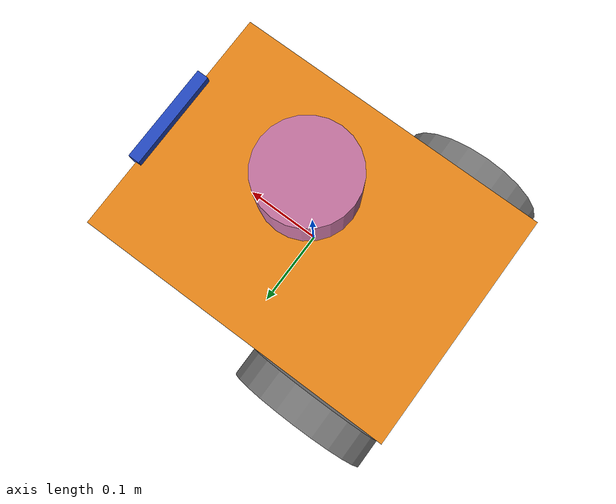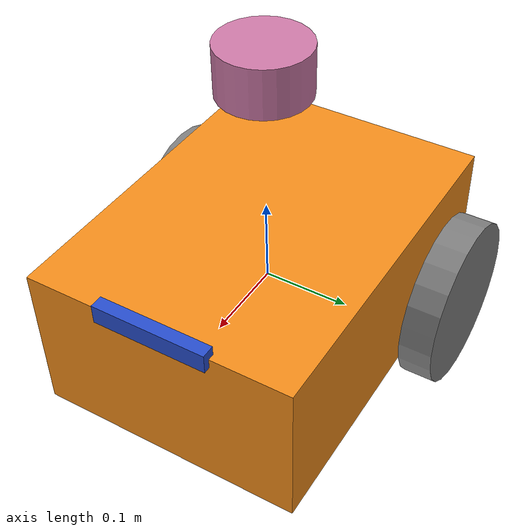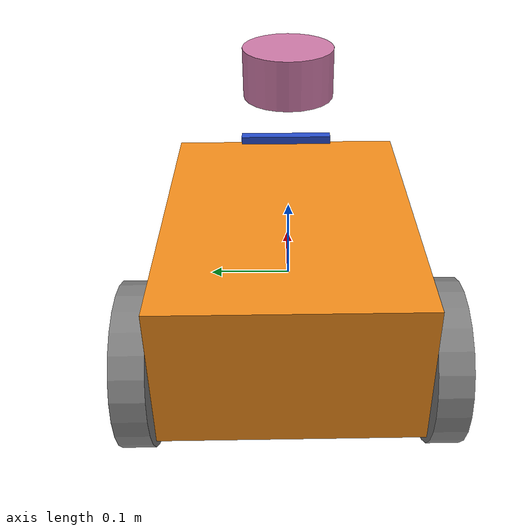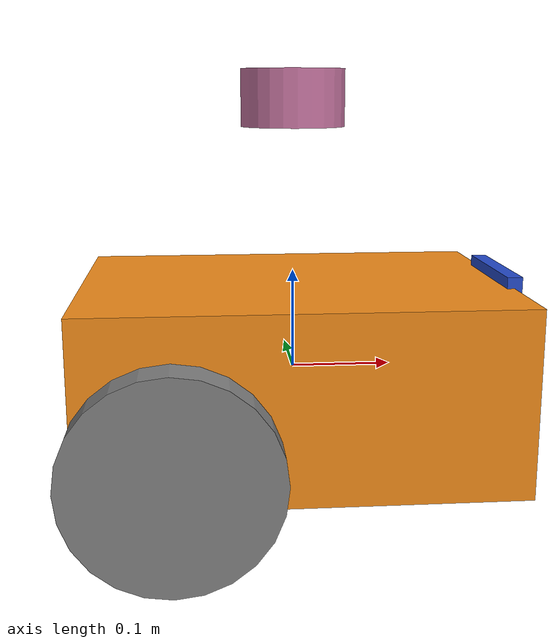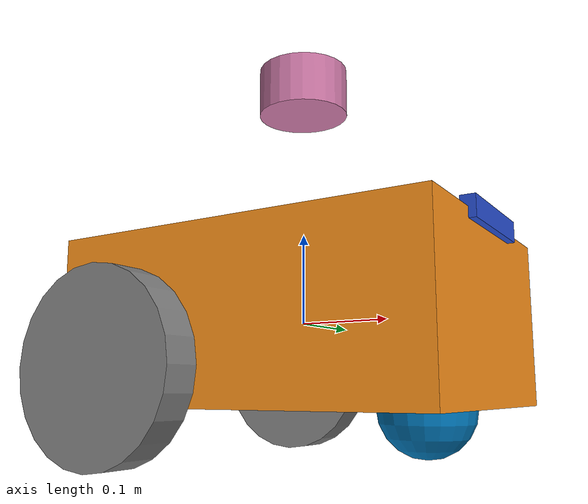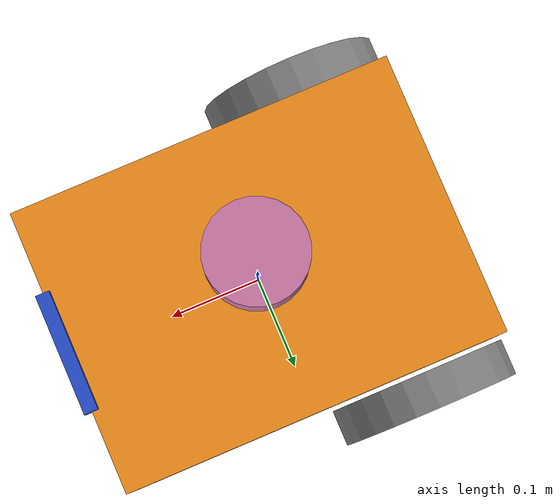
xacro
<?xml version="1.0"?>

<robot name="Anton" xmlns:xacro="http://www.ros.org/wiki/xacro">
  <xacro:include filename="./chasis_dimension_1.xacro"/>
  <xacro:include filename="./wheels_dimension_1.xacro"/>
  <xacro:include filename="./caster_dimension_1.xacro"/>
  <xacro:include filename="./chasis.xacro"/>
  <xacro:include filename="./wheels.xacro"/>
  <xacro:include filename="./caster.xacro"/>
  <xacro:include filename="./imu.xacro"/>
  <xacro:include filename="./laser.xacro"/>
  <xacro:include filename="./camera.xacro"/>
  <xacro:include filename="./AntonPlugins.xacro"/>
</robot>

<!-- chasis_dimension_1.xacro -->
<robot name="Anton" xmlns:xacro="http://www.ros.org/wiki/xacro">
  <xacro:property name="base_width" value="0.31"/>
  <xacro:property name="base_length" value="0.42"/>
  <xacro:property name="base_height" value="0.18"/>
</robot>

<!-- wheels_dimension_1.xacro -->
<robot name="Anton" xmlns:xacro="http://www.ros.org/wiki/xacro">
  <xacro:property name="base_wheel_gap" value="0.007"/>
	<xacro:property name="wheel_separation" value="0.4"/>
  <xacro:property name="wheel_joint_offset" value="0.02"/>
  <xacro:property name="wheel_radius" value="0.10"/>
  <xacro:property name="wheel_width" value="0.04"/>
  <xacro:property name="wheel_ygap" value="0.025"/>
  <xacro:property name="wheel_zoff" value="0.05"/>
  <xacro:property name="wheel_xoff" value="0.12"/>
</robot>

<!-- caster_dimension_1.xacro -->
<robot name="Anton" xmlns:xacro="http://www.ros.org/wiki/xacro">
  <xacro:property name="caster_wheel_radius" value="${wheel_radius/2}"/>
  <xacro:property name="caster_wheel_mass" value="0.001"/>
  <xacro:property name="caster_wheel_joint_offset" value="${base_length/3}"/>
</robot>

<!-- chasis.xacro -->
<robot name="Anton" xmlns:xacro="http://www.ros.org/wiki/xacro">

  <xacro:macro name="box_inertia" params="m w h d">
    <inertial>
      <mass value="${m}"/>
      <inertia ixx="${m / 12.0 * (d*d + h*h)}" ixy="0.0" ixz="0.0" iyy="${m / 12.0 * (w*w + h*h)}" iyz="0.0" izz="${m / 12.0 * (w*w + d*d)}"/>
    </inertial>
  </xacro:macro>

  <link name="base_footprint"/>
  <link name="base_link">
    <xacro:box_inertia m="30" w="${base_length}" h="${base_width}" d="${base_height}"/>
    <visual>
      <geometry>
        <box size="${base_length} ${base_width} ${base_height}"/>
      </geometry>
    </visual>

    <collision>
      <geometry>
        <box size="${base_length} ${base_width} ${base_height}"/>
      </geometry>
    </collision>
  </link>

  <joint name="base_joint" type="fixed">
    <origin xyz="0 0 ${-(wheel_radius+wheel_zoff)}" rpy="0 0 0" />
    <parent link="base_link"/>
    <child link="base_footprint" />
  </joint>

</robot>

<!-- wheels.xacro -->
<robot name="Anton" xmlns:xacro="http://www.ros.org/wiki/xacro">

  <xacro:macro name="cylinder_inertia" params="m r h">
      <inertial>
        <origin xyz="0 0 0" rpy="${pi/2} 0 0" />
        <mass value="${m}"/>
        <inertia ixx="${(m/12) * (3*r*r + h*h)}" ixy = "0" ixz = "0" iyy="${(m/12) * (3*r*r + h*h)}" iyz = "0" izz="${(m/2) * (r*r)}"/>
      </inertial>
  </xacro:macro>

  <xacro:macro name="wheel" params="prefix x_reflect y_reflect">
    <link name="${prefix}_link">
      <visual>
        <origin xyz="0 0 0" rpy="${pi/2} 0 0"/>
        <geometry>
            <cylinder radius="${wheel_radius}" length="${wheel_width}"/>
        </geometry>
        <material name="Gray">
          <color rgba="0.5 0.5 0.5 1.0"/>
        </material>
      </visual>

      <collision>
        <origin xyz="0 0 0" rpy="${pi/2} 0 0"/>
        <geometry>
          <cylinder radius="${wheel_radius}" length="${wheel_width}"/>
        </geometry>
        <surface>
        <friction>
          <ode>
            <mu>0.05</mu>
            <mu2>0.05</mu2>
          </ode>
        </friction>
      </surface>
      </collision>

      <xacro:cylinder_inertia m="5" r="${wheel_radius}" h="${wheel_width}"/>

    </link>

    <joint name="${prefix}_joint" type="continuous">
      <parent link="base_link"/>
      <child link="${prefix}_link"/>
      <origin xyz="${x_reflect*wheel_xoff} ${y_reflect*(base_width/2+wheel_ygap)} ${-wheel_zoff}" rpy="0 0 0"/>
      <axis xyz="0 1 0"/>
    </joint>
  </xacro:macro>

  <xacro:wheel prefix="drivewhl_l" x_reflect="-1" y_reflect="1" />
  <xacro:wheel prefix="drivewhl_r" x_reflect="-1" y_reflect="-1" />

</robot>

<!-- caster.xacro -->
<robot name="Anton" xmlns:xacro="http://www.ros.org/wiki/xacro">

  <xacro:macro name="sphere_inertia" params="m r">
    <inertial>
      <mass value="${m}"/>
      <inertia ixx="${2.0*m*(r*r)/5.0}" ixy="0.0" ixz="0.0" iyy="${2.0*m*(r*r)/5.0}" iyz="0.0" izz="${2.0*m*(r*r)/5.0}"/>
    </inertial>
  </xacro:macro>

  <link name="front_caster">
    <visual>
      <origin xyz="0 0 0" rpy="0 0 0"/>
      <geometry>
        <sphere radius="${caster_wheel_radius}"/>
      </geometry>
    </visual>

    <collision>
      <origin xyz="0 0 0" rpy="0 0 0"/>
      <geometry>
        <sphere radius="${caster_wheel_radius}"/>
      </geometry>
    </collision>

    <xacro:sphere_inertia m="5" r="${caster_wheel_radius}"/>
  </link>

  <joint name="caster_joint" type="fixed">
    <axis xyz="0 1 0" rpy="0 0 0" />
    <parent link="base_link"/>
    <child link="front_caster"/>

    <origin xyz="${caster_wheel_joint_offset} 0 -${base_height/2}" rpy="0 0 0"/>
  </joint>

</robot>

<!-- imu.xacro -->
<robot name="Anton" xmlns:xacro="http://www.ros.org/wiki/xacro">
  <xacro:property name="IMUsizeX" value="0.1"/>
  <xacro:property name="IMUsizeY" value="0.1"/>
  <xacro:property name="IMUsizeZ" value="0.1"/>
  <xacro:property name="IMUoriginX" value="0"/>
  <xacro:property name="IMUoriginY" value="0"/>
  <xacro:property name="IMUoriginZ" value="0.01"/>
  <link name="imu_link">
    <visual>
      <geometry>
        <box size="${IMUsizeX} ${IMUsizeY} ${IMUsizeZ}"/>
      </geometry>
      <material name="blue"/>
    </visual>
    <collision>
      <geometry>
        <box size="${IMUsizeX} ${IMUsizeY} ${IMUsizeZ}"/>
      </geometry>
    </collision>
    <xacro:box_inertia m="0.1" w="${IMUsizeX}" h="${IMUsizeY}" d="${IMUsizeZ}"/>
  </link>
  <joint name="imu_joint" type="fixed">
    <origin xyz="${IMUoriginX} ${IMUoriginY} ${IMUoriginZ}" rpy="0 0 0" />
    <parent link="base_link"/>
    <child link="imu_link"/>
  </joint>
</robot>

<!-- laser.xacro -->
<robot name="Anton" xmlns:xacro="http://www.ros.org/wiki/xacro">
  <link name="lidar_link">
    <inertial>
      <origin xyz="0 0 0" rpy="0 0 0"/>
      <mass value="0.125"/>
      <inertia ixx="0.001"  ixy="0"  ixz="0" iyy="0.001" iyz="0" izz="0.001" />
    </inertial>

    <collision>
      <origin xyz="0 0 0" rpy="0 0 0"/>
      <geometry>
        <cylinder radius="0.0508" length="0.055"/>
      </geometry>
    </collision>

    <visual>
      <origin xyz="0 0 0" rpy="0 0 0"/>
      <geometry>
        <cylinder radius="0.0508" length="0.055"/>
      </geometry>
    </visual>
  </link>

  <joint name="lidar_joint" type="fixed">
    <parent link="base_link"/>
    <child link="lidar_link"/>
    <origin xyz="0 0 ${base_height*3/2}" rpy="0 0 0"/>
  </joint>
</robot>

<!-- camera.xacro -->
<robot name="Anton" xmlns:xacro="http://www.ros.org/wiki/xacro">
    <xacro:property name="camera_size_x" value="0.015"/>
    <xacro:property name="camera_size_y" value="0.13"/>
    <xacro:property name="camera_size_z" value="0.022"/>
    <xacro:property name="camera_origin_x" value="${base_length/2}"/>
    <xacro:property name="camera_origin_y" value="0"/>
    <xacro:property name="camera_origin_z" value="${base_height/2}"/>
    <link name="camera_link">
        <visual>
            <geometry>
                <box size="${camera_size_x} ${camera_size_y} ${camera_size_z}"/>
            </geometry>
            <material name="blue"/>
        </visual>
        <collision>
            <geometry>
                <box size="${camera_size_x} ${camera_size_y} ${camera_size_z}"/>
            </geometry>
        </collision>
        <xacro:box_inertia m="0.035" w="${camera_size_x}" h="${camera_size_y}" d="${camera_size_z}"/>
    </link>
    <joint name="camera_joint" type="fixed">
        <origin xyz="${camera_origin_x} ${camera_origin_y} ${camera_origin_z}" rpy="0 0 0" />
        <parent link="base_link"/>
        <child link="camera_link" />
    </joint>
    <link name="camera_depth_frame"/>
    <joint name="camera_depth_joint" type="fixed">
        <origin xyz="0 0 0" rpy="${-pi/2} 0 ${-pi/2}"/>
        <parent link="camera_link"/>
        <child link="camera_depth_frame"/>
    </joint>
</robot>
